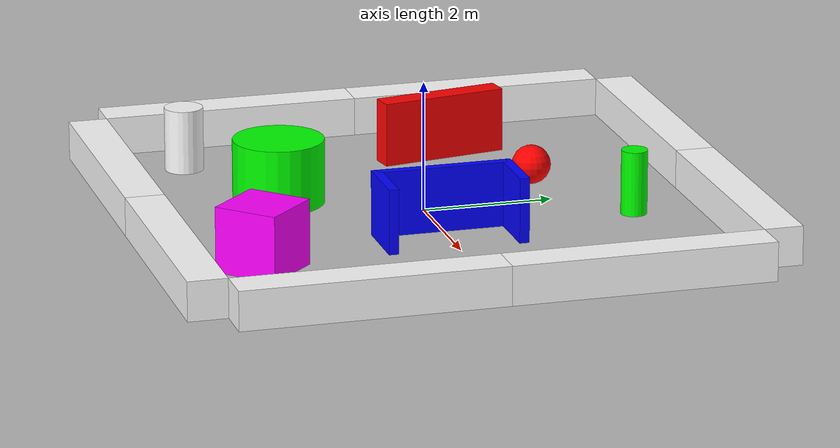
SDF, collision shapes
<?xml version="1.0" ?>
    <sdf version="1.5">
        <model name="a-frame">
            <static>true</static>

                <link name="right_up">
                    <pose>4.3 2.0 0.0 0 0 0.0</pose>
                    <collision name='right_up_collision'>
                        <pose>0.0 0.0 0.3 0 0 -1.5708</pose>
                            <geometry>
                                <box>
                                    <size>4.0 0.6 0.6</size>
                                </box>
                            </geometry>
                        <max_contacts>10</max_contacts>
                        <surface>
                            <bounce/>
                            <friction>
                            <ode/>
                            </friction>
                            <contact>
                            <ode/>
                            </contact>
                        </surface>
                    </collision>

                    <visual name='right_up_mesh'>
                        <pose>0.0 0.0 0.0 0 0 -1.5708</pose>
                        <geometry>
                        <mesh>
                            <uri>model://arena_a_frame/meshes/MCR2_arena_side.stl</uri>
                        </mesh>
                        </geometry>
                        <material>
                            <ambient>1 1 1 1</ambient>
                            <diffuse>1 1 1 1</diffuse>
                            <specular>1 1 1 1</specular>
                        </material>
                    </visual>

                <visual name='right_up_mcr2_logo'>
                        <pose>-0.07509 0.0 0.3759 0.785398 0.00 -1.5708</pose>
                        <geometry>
                            <plane>
                                    <normal>0 0 1</normal>
                                    <size>4.0 0.636396</size>
                            </plane>
                        </geometry>
                        <material>
                            <ambient>1.0 1.0 1.0 1</ambient>
                            <diffuse>1.0 1.0 1.0 1</diffuse>
                            <specular>1.0 1.0 1.0 1</specular>
                            <pbr>
                                <metal>
                                <albedo_map>model://arena_a_frame/materials/textures/mcr2_banner.png</albedo_map>
                                <normal_map>model://arena_a_frame/materials/textures/mcr2_banner.png</normal_map>
                                </metal>
                            </pbr>
                        </material>
                    </visual>
                </link>

                <link name="right_down">
                    <pose>4.3 -2.0 0.0 0 0 0.0</pose>
                    <collision name='right_down_collision'>
                        <pose>0.0 0.0 0.3 0 0 -1.5708</pose>
                            <geometry>
                                <box>
                                    <size>4.0 0.6 0.6</size>
                                </box>
                            </geometry>
                        <max_contacts>10</max_contacts>
                        <surface>
                            <bounce/>
                            <friction>
                            <ode/>
                            </friction>
                            <contact>
                            <ode/>
                            </contact>
                        </surface>
                    </collision>

                    <visual name='right_down_mesh'>
                        <pose>0.0 0.0 0.0 0 0 -1.5708</pose>
                        <geometry>
                        <mesh>
                            <uri>model://arena_a_frame/meshes/MCR2_arena_side.stl</uri>
                        </mesh>
                        </geometry>
                        <material>
                            <ambient>1 1 1 1</ambient>
                            <diffuse>1 1 1 1</diffuse>
                            <specular>1 1 1 1</specular>
                        </material>
                    </visual>

                <visual name='right_down_mcr2_logo'>
                        <pose>-0.07509 0.0 0.3759 0.785398 0.00 -1.5708</pose>
                        <geometry>
                            <plane>
                                    <normal>0 0 1</normal>
                                    <size>4.0 0.636396</size>
                            </plane>
                        </geometry>
                        <material>
                            <ambient>1.0 1.0 1.0 1</ambient>
                            <diffuse>1.0 1.0 1.0 1</diffuse>
                            <specular>1.0 1.0 1.0 1</specular>
                            <pbr>
                                <metal>
                                <albedo_map>model://arena_a_frame/materials/textures/mcr2_banner.png</albedo_map>
                                <normal_map>model://arena_a_frame/materials/textures/mcr2_banner.png</normal_map>
                                </metal>
                            </pbr>
                        </material>
                    </visual>
                </link>

		<!-- SECCIÓN PARA AÑADIR OBJETOS PROPIOS DEL MUNDO -->

		<link name="cubo_link">
		  <pose>1 0 0.5 0 0 0</pose> <!-- posición y orientación -->
		  <visual name="cubo_visual">
		    <geometry>
		      <box>
			<size>0.15 2 1</size> <!-- ancho, profundidad, alto -->
		      </box>
		    </geometry>
		    <material>
		      <ambient>0.3 0.3 0.3 1</ambient>
		      <diffuse>0 0 1 1</diffuse> <!-- azul -->
		    </material>
		  </visual>
		  <collision name="cubo_collision">
		    <geometry>
		      <box>
			<size>0.15 2 1</size>
		      </box>
		    </geometry>
		  </collision>
		</link>

		<link name="cubo2">
		  <pose>1.425 1 0.5 0 0 -1.5708</pose> <!-- posición y orientación -->
		  <visual name="cubo2_visual">
		    <geometry>
		      <box>
			<size>0.15 1 1</size> <!-- ancho, profundidad, alto -->
		      </box>
		    </geometry>
		    <material>
		      <ambient>0.3 0.3 0.3 1</ambient>
		      <diffuse>0 0 1 1</diffuse> <!-- azul -->
		    </material>
		  </visual>
		  <collision name="cubo2_collision">
		    <geometry>
		      <box>
			<size>0.15 1 1</size>
		      </box>
		    </geometry>
		  </collision>
		</link>

		<link name="cubo3">
		  <pose>1.425 -1 0.5 0 0 1.5708</pose> <!-- posición y orientación -->
		  <visual name="cubo3_visual">
		    <geometry>
		      <box>
			<size>0.15 1 1</size> <!-- ancho, profundidad, alto -->
		      </box>
		    </geometry>
		    <material>
		      <ambient>0.3 0.3 0.3 1</ambient>
		      <diffuse>0 0 1 1</diffuse> <!-- azul -->
		    </material>
		  </visual>
		  <collision name="cubo3_collision">
		    <geometry>
		      <box>
			<size>0.15 1 1</size>
		      </box>
		    </geometry>
		  </collision>
		</link>

		<link name="cubo4">
		  <pose>2 -3 0.5 0 0 0.7854</pose> <!-- posición y orientación -->
		  <visual name="cubo4_visual">
		    <geometry>
		      <box>
			<size>1 1 1</size> <!-- ancho, profundidad, alto -->
		      </box>
		    </geometry>
		    <material>
		      <ambient>0.3 0.3 0.3 1</ambient>
		      <diffuse>1 0 1 1</diffuse> <!-- azul -->
		    </material>
		  </visual>
		  <collision name="cubo4_collision">
		    <geometry>
		      <box>
			<size>1 1 1</size>
		      </box>
		    </geometry>
		  </collision>
		</link>

		<link name="cubo5">
		  <pose>-2.6 1 0.5 0 0 0.1708</pose> <!-- posición y orientación -->
		  <visual name="cubo5_visual">
		    <geometry>
		      <box>
			<size>0.35 2 1</size> <!-- ancho, profundidad, alto -->
		      </box>
		    </geometry>
		    <material>
		      <ambient>0.3 0.3 0.3 1</ambient>
		      <diffuse>1 0 0 1</diffuse> <!-- azul -->
		    </material>
		  </visual>
		  <collision name="cubo5_collision">
		    <geometry>
		      <box>
			<size>0.35 2 1</size>
		      </box>
		    </geometry>
		  </collision>
		</link>

		<link name="cilindro_link">
		  <pose>1 3 0.5 0 0 0</pose>
		  <visual name="cilindro_visual">
		    <geometry>
		      <cylinder>
			<radius>0.20</radius>
			<length>1</length>
		      </cylinder>
		    </geometry>
		    <material>
		      <ambient>0.3 0.3 0.3 1</ambient>
		      <diffuse>0 1 0 1</diffuse> <!-- amarillo -->
		    </material>
		  </visual>
		  <collision name="cilindro_collision">
		    <geometry>
		      <cylinder>
			<radius>0.20</radius>
			<length>1</length>
		      </cylinder>
		    </geometry>
		  </collision>
		</link>

		<link name="cilindro2">
		  <pose>-1 -2 0.5 0 0 0</pose>
		  <visual name="cilindro2_visual">
		    <geometry>
		      <cylinder>
			<radius>0.7</radius>
			<length>1</length>
		      </cylinder>
		    </geometry>
		    <material>
		      <ambient>0.3 0.3 0.3 1</ambient>
		      <diffuse>0 1 0 1</diffuse> <!-- amarillo -->
		    </material>
		  </visual>
		  <collision name="cilindro2_collision">
		    <geometry>
		      <cylinder>
			<radius>0.7</radius>
			<length>1</length>
		      </cylinder>
		    </geometry>
		  </collision>
		</link>

		<link name="cilindro3">
		  <pose>-3 -3 0.5 0 0 0</pose>
		  <visual name="cilindro3_visual">
		    <geometry>
		      <cylinder>
			<radius>0.3</radius>
			<length>1</length>
		      </cylinder>
		    </geometry>
		    <material>
		      <ambient>0.3 0.3 0.3 1</ambient>
		      <diffuse>1 1 1 1</diffuse> <!-- amarillo -->
		    </material>
		  </visual>
		  <collision name="cilindro3_collision">
		    <geometry>
		      <cylinder>
			<radius>0.3</radius>
			<length>1</length>
		      </cylinder>
		    </geometry>
		  </collision>
		</link>

		<link name="esfera_link">
		  <pose>-1 2 0.25 0 0 0</pose>
		  <visual name="esfera_visual">
		    <geometry>
		      <sphere>
			<radius>0.3</radius>
		      </sphere>
		    </geometry>
		    <material>
		      <ambient>0.3 0.3 0.3 1</ambient>
		      <diffuse>1 0 0 1</diffuse> <!-- rojo -->
		    </material>
		  </visual>
		  <collision name="esfera_collision">
		    <geometry>
		      <sphere>
			<radius>0.3</radius>
		      </sphere>
		    </geometry>
		  </collision>
		</link>

		<!-- FIN DE LA SECCIÓN DE OBJETOS PARA EL MUNDO -->

                <link name="left_up">
                    <pose>-4.3 2.0 0.0 0 0 3.141592654</pose>
                    <collision name='left_up_collision'>
                        <pose>0.0 0.0 0.3 0 0 -1.5708</pose>
                            <geometry>
                                <box>
                                    <size>4.0 0.6 0.6</size>
                                </box>
                            </geometry>
                        <max_contacts>10</max_contacts>
                        <surface>
                            <bounce/>
                            <friction>
                            <ode/>
                            </friction>
                            <contact>
                            <ode/>
                            </contact>
                        </surface>
                    </collision>

                    <visual name='left_up_mesh'>
                        <pose>0.0 0.0 0.0 0 0 -1.5708</pose>
                        <geometry>
                        <mesh>
                            <uri>model://arena_a_frame/meshes/MCR2_arena_side.stl</uri>
                        </mesh>
                        </geometry>
                        <material>
                            <ambient>1 1 1 1</ambient>
                            <diffuse>1 1 1 1</diffuse>
                            <specular>1 1 1 1</specular>
                        </material>
                    </visual>

                <visual name='left_up_mcr2_logo'>
                        <pose>-0.07509 0.0 0.3759 0.785398 0.00 -1.5708</pose>
                        <geometry>
                            <plane>
                                    <normal>0 0 1</normal>
                                    <size>4.0 0.636396</size>
                            </plane>
                        </geometry>
                        <material>
                            <ambient>1.0 1.0 1.0 1</ambient>
                            <diffuse>1.0 1.0 1.0 1</diffuse>
                            <specular>1.0 1.0 1.0 1</specular>
                            <pbr>
                                <metal>
                                <albedo_map>model://arena_a_frame/materials/textures/mcr2_banner.png</albedo_map>
                                <normal_map>model://arena_a_frame/materials/textures/mcr2_banner.png</normal_map>
                                </metal>
                            </pbr>
                        </material>
                    </visual>
                </link>

                <link name="left_down">
                    <pose>-4.3 -2.0 0.0 0 0 3.141592654</pose>
                    <collision name='left_down_collision'>
                        <pose>0.0 0.0 0.3 0 0 -1.5708</pose>
                            <geometry>
                                <box>
                                    <size>4.0 0.6 0.6</size>
                                </box>
                            </geometry>
                        <max_contacts>10</max_contacts>
                        <surface>
                            <bounce/>
                            <friction>
                            <ode/>
                            </friction>
                            <contact>
                            <ode/>
                            </contact>
                        </surface>
                    </collision>

                    <visual name='left_down_mesh'>
                        <pose>0.0 0.0 0.0 0 0 -1.5708</pose>
                        <geometry>
                        <mesh>
                            <uri>model://arena_a_frame/meshes/MCR2_arena_side.stl</uri>
                        </mesh>
                        </geometry>
                        <material>
                            <ambient>1 1 1 1</ambient>
                            <diffuse>1 1 1 1</diffuse>
                            <specular>1 1 1 1</specular>
                        </material>
                    </visual>

                <visual name='left_down_mcr2_logo'>
                        <pose>-0.07509 0.0 0.3759 0.785398 0.00 -1.5708</pose>
                        <geometry>
                            <plane>
                                    <normal>0 0 1</normal>
                                    <size>4.0 0.636396</size>
                            </plane>
                        </geometry>
                        <material>
                            <ambient>1.0 1.0 1.0 1</ambient>
                            <diffuse>1.0 1.0 1.0 1</diffuse>
                            <specular>1.0 1.0 1.0 1</specular>
                            <pbr>
                                <metal>
                                <albedo_map>model://arena_a_frame/materials/textures/mcr2_banner.png</albedo_map>
                                <normal_map>model://arena_a_frame/materials/textures/mcr2_banner.png</normal_map>
                                </metal>
                            </pbr>
                        </material>
                    </visual>
                </link>

                <link name="bottom_right">
                    <pose>2.0 -4.3 0.0 0 0 -1.5708</pose>
                    <collision name='bottom_right_collision'>
                        <pose>0.0 0.0 0.3 0 0 -1.5708</pose>
                            <geometry>
                                <box>
                                    <size>4.0 0.6 0.6</size>
                                </box>
                            </geometry>
                        <max_contacts>10</max_contacts>
                        <surface>
                            <bounce/>
                            <friction>
                            <ode/>
                            </friction>
                            <contact>
                            <ode/>
                            </contact>
                        </surface>
                    </collision>

                    <visual name='bottom_right_mesh'>
                        <pose>0.0 0.0 0.0 0 0 -1.5708</pose>
                        <geometry>
                        <mesh>
                            <uri>model://arena_a_frame/meshes/MCR2_arena_side.stl</uri>
                        </mesh>
                        </geometry>
                        <material>
                            <ambient>1 1 1 1</ambient>
                            <diffuse>1 1 1 1</diffuse>
                            <specular>1 1 1 1</specular>
                        </material>
                    </visual>

                <visual name='bottom_right_mcr2_logo'>
                        <pose>-0.07509 0.0 0.3759 0.785398 0.0 -1.5708</pose>
                        <geometry>
                            <plane>
                                    <normal>0 0 1</normal>
                                    <size>4.0 0.636396</size>
                            </plane>
                        </geometry>
                        <material>
                            <ambient>1.0 1.0 1.0 1</ambient>
                            <diffuse>1.0 1.0 1.0 1</diffuse>
                            <specular>1.0 1.0 1.0 1</specular>
                            <pbr>
                                <metal>
                                <albedo_map>model://arena_a_frame/materials/textures/mcr2_banner.png</albedo_map>
                                <normal_map>model://arena_a_frame/materials/textures/mcr2_banner.png</normal_map>
                                </metal>
                            </pbr>
                        </material>
                    </visual>
                </link>

                <link name="bottom_left">
                    <pose>-2.0 -4.3 0.0 0 0 -1.5708</pose>
                    <collision name='bottom_left_collision'>
                        <pose>0.0 0.0 0.3 0 0 -1.5708</pose>
                            <geometry>
                                <box>
                                    <size>4.0 0.6 0.6</size>
                                </box>
                            </geometry>
                        <max_contacts>10</max_contacts>
                        <surface>
                            <bounce/>
                            <friction>
                            <ode/>
                            </friction>
                            <contact>
                            <ode/>
                            </contact>
                        </surface>
                    </collision>

                    <visual name='bottom_left_mesh'>
                        <pose>0.0 0.0 0.0 0 0 -1.5708</pose>
                        <geometry>
                        <mesh>
                            <uri>model://arena_a_frame/meshes/MCR2_arena_side.stl</uri>
                        </mesh>
                        </geometry>
                        <material>
                            <ambient>1 1 1 1</ambient>
                            <diffuse>1 1 1 1</diffuse>
                            <specular>1 1 1 1</specular>
                        </material>
                    </visual>

                <visual name='bottom_left_mcr2_logo'>
                        <pose>-0.07509 0.0 0.3759 0.785398 0.0 -1.5708</pose>
                        <geometry>
                            <plane>
                                    <normal>0 0 1</normal>
                                    <size>4.0 0.636396</size>
                            </plane>
                        </geometry>
                        <material>
                            <ambient>1.0 1.0 1.0 1</ambient>
                            <diffuse>1.0 1.0 1.0 1</diffuse>
                            <specular>1.0 1.0 1.0 1</specular>
                            <pbr>
                                <metal>
                                <albedo_map>model://arena_a_frame/materials/textures/mcr2_banner.png</albedo_map>
                                <normal_map>model://arena_a_frame/materials/textures/mcr2_banner.png</normal_map>
                                </metal>
                            </pbr>
                        </material>
                    </visual>
                </link>

                <link name="top_right">
                    <pose>2.0 4.3 0.0 0 0 1.5708</pose>
                    <collision name='top_right_collision'>
                        <pose>0.0 0.0 0.3 0 0 -1.5708</pose>
                            <geometry>
                                <box>
                                    <size>4.0 0.6 0.6</size>
                                </box>
                            </geometry>
                        <max_contacts>10</max_contacts>
                        <surface>
                            <bounce/>
                            <friction>
                            <ode/>
                            </friction>
                            <contact>
                            <ode/>
                            </contact>
                        </surface>
                    </collision>

                    <visual name='top_right_mesh'>
                        <pose>0.0 0.0 0.0 0 0 -1.5708</pose>
                        <geometry>
                        <mesh>
                            <uri>model://arena_a_frame/meshes/MCR2_arena_side.stl</uri>
                        </mesh>
                        </geometry>
                        <material>
                            <ambient>1 1 1 1</ambient>
                            <diffuse>1 1 1 1</diffuse>
                            <specular>1 1 1 1</specular>
                        </material>
                    </visual>

                <visual name='top_right_mcr2_logo'>
                        <pose>-0.07509 0.0 0.3759 0.785398 0.0 -1.5708</pose>
                        <geometry>
                            <plane>
                                    <normal>0 0 1</normal>
                                    <size>4.0 0.636396</size>
                            </plane>
                        </geometry>
                        <material>
                            <ambient>1.0 1.0 1.0 1</ambient>
                            <diffuse>1.0 1.0 1.0 1</diffuse>
                            <specular>1.0 1.0 1.0 1</specular>
                            <pbr>
                                <metal>
                                <albedo_map>model://arena_a_frame/materials/textures/mcr2_banner.png</albedo_map>
                                <normal_map>model://arena_a_frame/materials/textures/mcr2_banner.png</normal_map>
                                </metal>
                            </pbr>
                        </material>
                    </visual>
                </link>

                <link name="top_left">
                    <pose>-2.0 4.3 0.0 0 0 1.5708</pose>
                    <collision name='top_left_collision'>
                        <pose>0.0 0.0 0.3 0 0 -1.5708</pose>
                            <geometry>
                                <box>
                                    <size>4.0 0.6 0.6</size>
                                </box>
                            </geometry>
                        <max_contacts>10</max_contacts>
                        <surface>
                            <bounce/>
                            <friction>
                            <ode/>
                            </friction>
                            <contact>
                            <ode/>
                            </contact>
                        </surface>
                    </collision>

                    <visual name='top_left_mesh'>
                        <pose>0.0 0.0 0.0 0 0 -1.5708</pose>
                        <geometry>
                        <mesh>
                            <uri>model://arena_a_frame/meshes/MCR2_arena_side.stl</uri>
                        </mesh>
                        </geometry>
                        <material>
                            <ambient>1 1 1 1</ambient>
                            <diffuse>1 1 1 1</diffuse>
                            <specular>1 1 1 1</specular>
                        </material>
                    </visual>

                <visual name='top_left_mcr2_logo'>
                        <pose>-0.07509 0.0 0.3759 0.785398 0.0 -1.5708</pose>
                        <geometry>
                            <plane>
                                    <normal>0 0 1</normal>
                                    <size>4.0 0.636396</size>
                            </plane>
                        </geometry>
                        <material>
                            <ambient>1.0 1.0 1.0 1</ambient>
                            <diffuse>1.0 1.0 1.0 1</diffuse>
                            <specular>1.0 1.0 1.0 1</specular>
                            <pbr>
                                <metal>
                                <albedo_map>model://arena_a_frame/materials/textures/mcr2_banner.png</albedo_map>
                                <normal_map>model://arena_a_frame/materials/textures/mcr2_banner.png</normal_map>
                                </metal>
                            </pbr>
                        </material>
                    </visual>
                </link>
        </model>
    </sdf>
